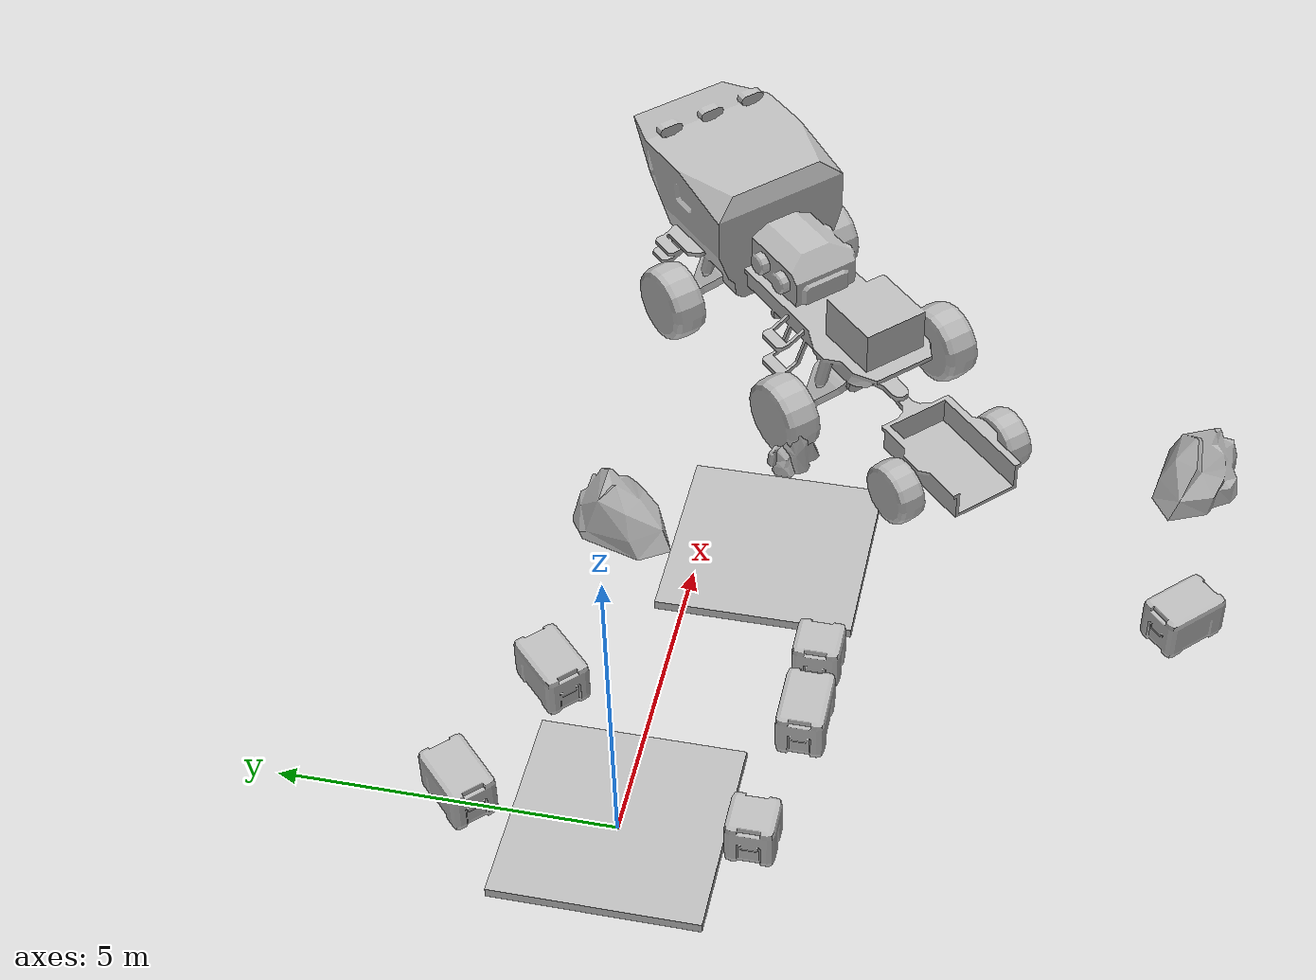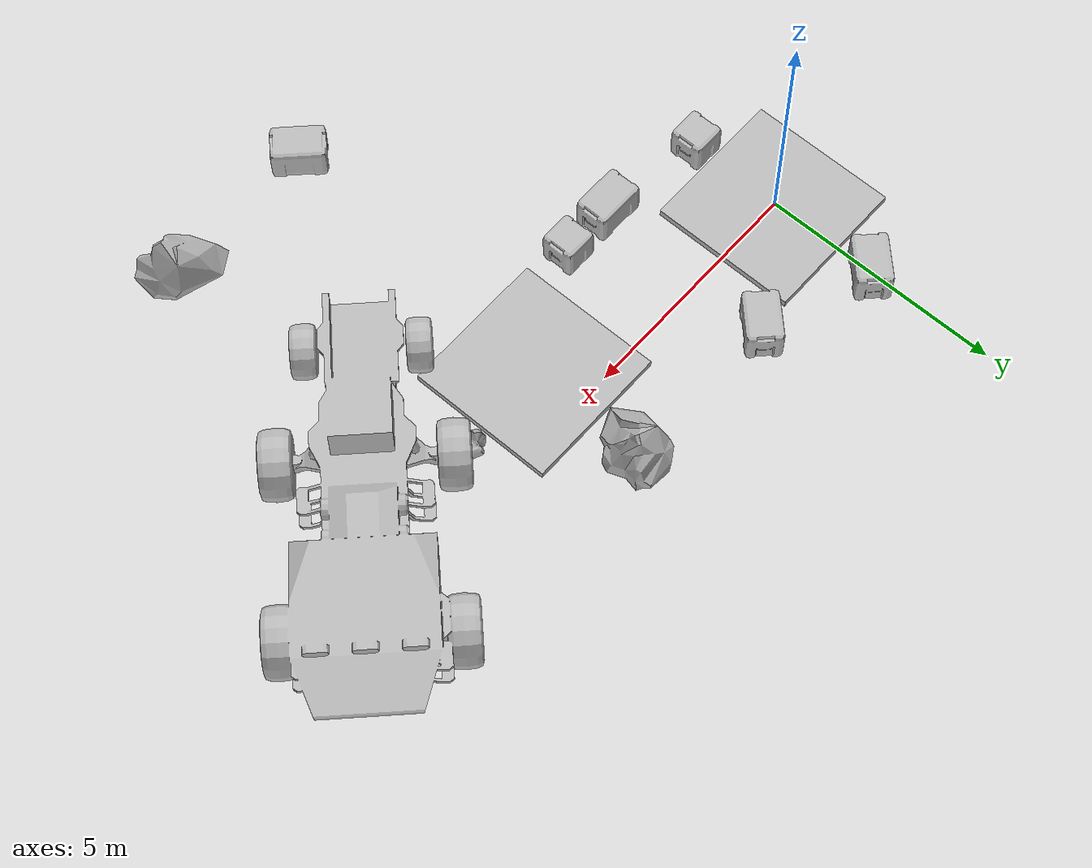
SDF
<sdf version="1.6">
 <world name="SRC_finals">
  <include>
   <name>walkway_1</name>
   <pose>0.09
      0
      -0.052151
      0
      0
      3.141592653589793</pose>
   <uri>model://walkway_finish_opposite</uri>
  </include>
  <include>
   <name>mars_crate_long_1</name>
   <pose>0.09000000000000037
      2.324
      0
      0
      0
      0.785398163397448</pose>
   <uri>model://mars_crate_long</uri>
  </include>
  <include>
   <name>mars_crate_2</name>
   <pose>0.08999999999999976
      -1.924
      0
      0
      0
      3.141592653589793</pose>
   <uri>model://mars_crate</uri>
  </include>
  <include>
   <name>mars_crate_long_3</name>
   <pose>2.3760000000000003
      1.5619999999999998
      0
      0
      0
      0.785398163397448</pose>
   <uri>model://mars_crate_long</uri>
  </include>
  <include>
   <name>mars_crate_4</name>
   <pose>3.4539547922204332
      -2.2397649636193724
      0
      0
      0
      3.141592653589793</pose>
   <uri>model://mars_crate</uri>
  </include>
  <include>
   <name>mars_crate_long_5</name>
   <pose>2.293909367271195
      -2.25305038856861
      0
      0
      0
      3.141592653589793</pose>
   <uri>model://mars_crate_long</uri>
  </include>
  <include>
   <name>walkway_4</name>
   <pose>5.739954792220433
      -1.0777649636193727
      -0.052151
      0
      0
      3.141592653589793</pose>
   <uri>model://walkway_finish_adjacent</uri>
  </include>
  <include>
   <name>mars_rock_2_6</name>
   <pose>7.763954792220433
      -1.0777649636193727
      0
      0
      0
      -1.5707963267948968</pose>
   <uri>model://mars_rock_2</uri>
  </include>
  <include>
   <name>mars_rock_3_7</name>
   <pose>5.739954792220433
      1.5462350363806274
      0
      0
      0
      -1.8369701987210297e-16</pose>
   <uri>model://mars_rock_3</uri>
  </include>
  <include>
   <pose>10.539036134088196
        -0.7205184482799094
        0
        0
        0
        2.356194490192345</pose>
   <uri>model://mars_explorer</uri>
  </include>
  <include>
   <name>mars_crate_long_8</name>
   <pose>5.255719755839805
      -7.489719755839806
      0
      0
      0
      2.356194490192345</pose>
   <uri>model://mars_crate_long</uri>
  </include>
  <include>
   <name>mars_rock_3_9</name>
   <pose>8.679719755839805
      -7.489719755839806
      0
      0
      0
      -1.5707963267948968</pose>
   <uri>model://mars_rock_3</uri>
  </include>
 </world>
</sdf>
